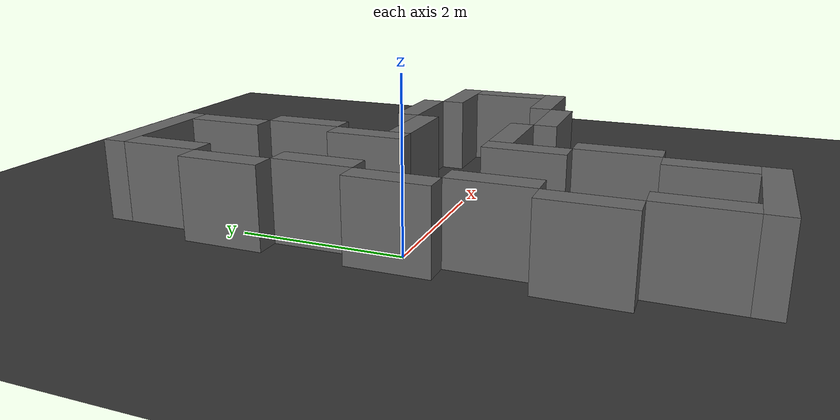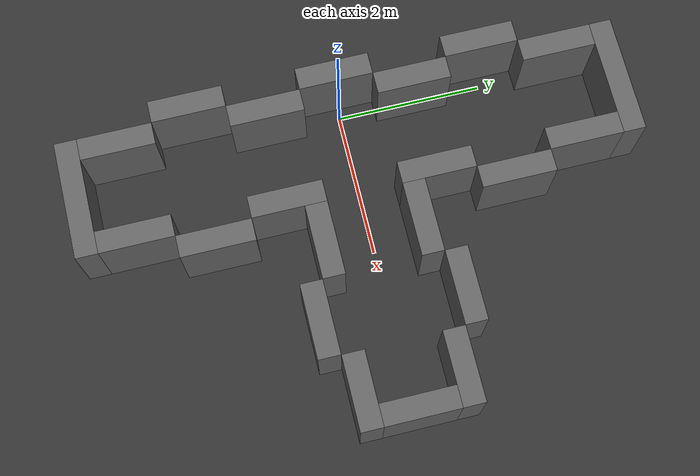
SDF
<sdf version="1.6">
 <world name="default">
  <include><uri>model://sun</uri><pose>12 0 20 0 0 0</pose></include>
  <include><uri>model://fms_t_road</uri></include>
 </world>
</sdf>

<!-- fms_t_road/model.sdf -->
<sdf version="1.6">
<model name='fms_t_road'>
  <static>true</static>
  <pose>0 0 0 0 0 0</pose>
  <link name='link'>
    <collision name='collision'>
      <geometry>
        <plane>
          <normal>0 0 1</normal>
          <size>1000 1000</size>
        </plane>
      </geometry>
    </collision>

    <visual name='visual'>
      <cast_shadows>0</cast_shadows>
      <geometry>
        <plane>
          <normal>0 0 1</normal>
          <size>1000 1000</size>
        </plane>
      </geometry>
      <material>
        <ambient>0.2 0.2 0.2 0.0</ambient>
        <diffuse>0.2 0.2 0.2 0.0</diffuse>
        <specular>0 0 0 0</specular>
        <emissive>0 0 0 1</emissive>
      </material>
    </visual>
    <self_collide>0</self_collide>
    <enable_wind>0</enable_wind>
    <kinematic>0</kinematic>
  </link>

  <link name="wall_0">
    <pose>0.00 3.00 0.50 0 0 0</pose>
    <collision>
      <geometry>
        <box>
          <size>0.30 1.00 1.00</size>
        </box>
      </geometry>
    </collision>
    <visual>
      <geometry>
        <box>
          <size>0.30 1.00 1.00</size>
        </box>
      </geometry>
      <material>
        <ambient>0.4 0.4 0.4 1.0</ambient>
        <diffuse>0.4 0.4 0.4 1.0</diffuse>
        <specular>0 0 0 0</specular>
        <emissive>0 0 0 1</emissive>
      </material>
    </visual>
    <self_collide>0</self_collide>
    <enable_wind>0</enable_wind>
    <kinematic>0</kinematic>
  </link>
  <link name="wall_0">
    <pose>-0.30 2.00 0.50 0 0 0</pose>
    <collision>
      <geometry>
        <box>
          <size>0.30 1.00 1.00</size>
        </box>
      </geometry>
    </collision>
    <visual>
      <geometry>
        <box>
          <size>0.30 1.00 1.00</size>
        </box>
      </geometry>
      <material>
        <ambient>0.4 0.4 0.4 1.0</ambient>
        <diffuse>0.4 0.4 0.4 1.0</diffuse>
        <specular>0 0 0 0</specular>
        <emissive>0 0 0 1</emissive>
      </material>
    </visual>
    <self_collide>0</self_collide>
    <enable_wind>0</enable_wind>
    <kinematic>0</kinematic>
  </link>
  <link name="wall_0">
    <pose>0.00 1.00 0.50 0 0 0</pose>
    <collision>
      <geometry>
        <box>
          <size>0.30 1.00 1.00</size>
        </box>
      </geometry>
    </collision>
    <visual>
      <geometry>
        <box>
          <size>0.30 1.00 1.00</size>
        </box>
      </geometry>
      <material>
        <ambient>0.4 0.4 0.4 1.0</ambient>
        <diffuse>0.4 0.4 0.4 1.0</diffuse>
        <specular>0 0 0 0</specular>
        <emissive>0 0 0 1</emissive>
      </material>
    </visual>
    <self_collide>0</self_collide>
    <enable_wind>0</enable_wind>
    <kinematic>0</kinematic>
  </link>
  <link name="wall_0">
    <pose>-0.30 0.00 0.50 0 0 0</pose>
    <collision>
      <geometry>
        <box>
          <size>0.30 1.00 1.00</size>
        </box>
      </geometry>
    </collision>
    <visual>
      <geometry>
        <box>
          <size>0.30 1.00 1.00</size>
        </box>
      </geometry>
      <material>
        <ambient>0.4 0.4 0.4 1.0</ambient>
        <diffuse>0.4 0.4 0.4 1.0</diffuse>
        <specular>0 0 0 0</specular>
        <emissive>0 0 0 1</emissive>
      </material>
    </visual>
    <self_collide>0</self_collide>
    <enable_wind>0</enable_wind>
    <kinematic>0</kinematic>
  </link>
  <link name="wall_0">
    <pose>0.00 -1.00 0.50 0 0 0</pose>
    <collision>
      <geometry>
        <box>
          <size>0.30 1.00 1.00</size>
        </box>
      </geometry>
    </collision>
    <visual>
      <geometry>
        <box>
          <size>0.30 1.00 1.00</size>
        </box>
      </geometry>
      <material>
        <ambient>0.4 0.4 0.4 1.0</ambient>
        <diffuse>0.4 0.4 0.4 1.0</diffuse>
        <specular>0 0 0 0</specular>
        <emissive>0 0 0 1</emissive>
      </material>
    </visual>
    <self_collide>0</self_collide>
    <enable_wind>0</enable_wind>
    <kinematic>0</kinematic>
  </link>
  <link name="wall_0">
    <pose>-0.30 -2.00 0.50 0 0 0</pose>
    <collision>
      <geometry>
        <box>
          <size>0.30 1.00 1.00</size>
        </box>
      </geometry>
    </collision>
    <visual>
      <geometry>
        <box>
          <size>0.30 1.00 1.00</size>
        </box>
      </geometry>
      <material>
        <ambient>0.4 0.4 0.4 1.0</ambient>
        <diffuse>0.4 0.4 0.4 1.0</diffuse>
        <specular>0 0 0 0</specular>
        <emissive>0 0 0 1</emissive>
      </material>
    </visual>
    <self_collide>0</self_collide>
    <enable_wind>0</enable_wind>
    <kinematic>0</kinematic>
  </link>
  <link name="wall_0">
    <pose>0.00 -3.00 0.50 0 0 0</pose>
    <collision>
      <geometry>
        <box>
          <size>0.30 1.00 1.00</size>
        </box>
      </geometry>
    </collision>
    <visual>
      <geometry>
        <box>
          <size>0.30 1.00 1.00</size>
        </box>
      </geometry>
      <material>
        <ambient>0.4 0.4 0.4 1.0</ambient>
        <diffuse>0.4 0.4 0.4 1.0</diffuse>
        <specular>0 0 0 0</specular>
        <emissive>0 0 0 1</emissive>
      </material>
    </visual>
    <self_collide>0</self_collide>
    <enable_wind>0</enable_wind>
    <kinematic>0</kinematic>
  </link>
  <link name="wall_1">
    <pose>0.65 3.65 0.50 0 0 0</pose>
    <collision>
      <geometry>
        <box>
          <size>1.60 0.30 1.00</size>
        </box>
      </geometry>
    </collision>
    <visual>
      <geometry>
        <box>
          <size>1.60 0.30 1.00</size>
        </box>
      </geometry>
      <material>
        <ambient>0.4 0.4 0.4 1.0</ambient>
        <diffuse>0.4 0.4 0.4 1.0</diffuse>
        <specular>0 0 0 0</specular>
        <emissive>0 0 0 1</emissive>
      </material>
    </visual>
    <self_collide>0</self_collide>
    <enable_wind>0</enable_wind>
    <kinematic>0</kinematic>
  </link>
  <link name="wall_2">
    <pose>0.65 -3.65 0.50 0 0 0</pose>
    <collision>
      <geometry>
        <box>
          <size>1.60 0.30 1.00</size>
        </box>
      </geometry>
    </collision>
    <visual>
      <geometry>
        <box>
          <size>1.60 0.30 1.00</size>
        </box>
      </geometry>
      <material>
        <ambient>0.4 0.4 0.4 1.0</ambient>
        <diffuse>0.4 0.4 0.4 1.0</diffuse>
        <specular>0 0 0 0</specular>
        <emissive>0 0 0 1</emissive>
      </material>
    </visual>
    <self_collide>0</self_collide>
    <enable_wind>0</enable_wind>
    <kinematic>0</kinematic>
  </link>
  <link name="wall_3">
    <pose>1.30 1.00 0.50 0 0 0</pose>
    <collision>
      <geometry>
        <box>
          <size>0.30 1.00 1.00</size>
        </box>
      </geometry>
    </collision>
    <visual>
      <geometry>
        <box>
          <size>0.30 1.00 1.00</size>
        </box>
      </geometry>
      <material>
        <ambient>0.4 0.4 0.4 1.0</ambient>
        <diffuse>0.4 0.4 0.4 1.0</diffuse>
        <specular>0 0 0 0</specular>
        <emissive>0 0 0 1</emissive>
      </material>
    </visual>
    <self_collide>0</self_collide>
    <enable_wind>0</enable_wind>
    <kinematic>0</kinematic>
  </link>
  <link name="wall_4">
    <pose>1.30 -3.00 0.50 0 0 0</pose>
    <collision>
      <geometry>
        <box>
          <size>0.30 1.00 1.00</size>
        </box>
      </geometry>
    </collision>
    <visual>
      <geometry>
        <box>
          <size>0.30 1.00 1.00</size>
        </box>
      </geometry>
      <material>
        <ambient>0.4 0.4 0.4 1.0</ambient>
        <diffuse>0.4 0.4 0.4 1.0</diffuse>
        <specular>0 0 0 0</specular>
        <emissive>0 0 0 1</emissive>
      </material>
    </visual>
    <self_collide>0</self_collide>
    <enable_wind>0</enable_wind>
    <kinematic>0</kinematic>
  </link>
  <link name="wall_3">
    <pose>1.60 2.00 0.50 0 0 0</pose>
    <collision>
      <geometry>
        <box>
          <size>0.30 1.00 1.00</size>
        </box>
      </geometry>
    </collision>
    <visual>
      <geometry>
        <box>
          <size>0.30 1.00 1.00</size>
        </box>
      </geometry>
      <material>
        <ambient>0.4 0.4 0.4 1.0</ambient>
        <diffuse>0.4 0.4 0.4 1.0</diffuse>
        <specular>0 0 0 0</specular>
        <emissive>0 0 0 1</emissive>
      </material>
    </visual>
    <self_collide>0</self_collide>
    <enable_wind>0</enable_wind>
    <kinematic>0</kinematic>
  </link>
  <link name="wall_4">
    <pose>1.60 -2.00 0.50 0 0 0</pose>
    <collision>
      <geometry>
        <box>
          <size>0.30 1.00 1.00</size>
        </box>
      </geometry>
    </collision>
    <visual>
      <geometry>
        <box>
          <size>0.30 1.00 1.00</size>
        </box>
      </geometry>
      <material>
        <ambient>0.4 0.4 0.4 1.0</ambient>
        <diffuse>0.4 0.4 0.4 1.0</diffuse>
        <specular>0 0 0 0</specular>
        <emissive>0 0 0 1</emissive>
      </material>
    </visual>
    <self_collide>0</self_collide>
    <enable_wind>0</enable_wind>
    <kinematic>0</kinematic>
  </link>
  <link name="wall_3">
    <pose>1.30 3.00 0.50 0 0 0</pose>
    <collision>
      <geometry>
        <box>
          <size>0.30 1.00 1.00</size>
        </box>
      </geometry>
    </collision>
    <visual>
      <geometry>
        <box>
          <size>0.30 1.00 1.00</size>
        </box>
      </geometry>
      <material>
        <ambient>0.4 0.4 0.4 1.0</ambient>
        <diffuse>0.4 0.4 0.4 1.0</diffuse>
        <specular>0 0 0 0</specular>
        <emissive>0 0 0 1</emissive>
      </material>
    </visual>
    <self_collide>0</self_collide>
    <enable_wind>0</enable_wind>
    <kinematic>0</kinematic>
  </link>
  <link name="wall_4">
    <pose>1.30 -1.00 0.50 0 0 0</pose>
    <collision>
      <geometry>
        <box>
          <size>0.30 1.00 1.00</size>
        </box>
      </geometry>
    </collision>
    <visual>
      <geometry>
        <box>
          <size>0.30 1.00 1.00</size>
        </box>
      </geometry>
      <material>
        <ambient>0.4 0.4 0.4 1.0</ambient>
        <diffuse>0.4 0.4 0.4 1.0</diffuse>
        <specular>0 0 0 0</specular>
        <emissive>0 0 0 1</emissive>
      </material>
    </visual>
    <self_collide>0</self_collide>
    <enable_wind>0</enable_wind>
    <kinematic>0</kinematic>
  </link>
  <link name="wall_5">
    <pose>1.95 0.65 0.50 0 0 0</pose>
    <collision>
      <geometry>
        <box>
          <size>1.00 0.30 1.00</size>
        </box>
      </geometry>
    </collision>
    <visual>
      <geometry>
        <box>
          <size>1.00 0.30 1.00</size>
        </box>
      </geometry>
      <material>
        <ambient>0.4 0.4 0.4 1.0</ambient>
        <diffuse>0.4 0.4 0.4 1.0</diffuse>
        <specular>0 0 0 0</specular>
        <emissive>0 0 0 1</emissive>
      </material>
    </visual>
    <self_collide>0</self_collide>
    <enable_wind>0</enable_wind>
    <kinematic>0</kinematic>
  </link>
  <link name="wall_6">
    <pose>1.95 -0.65 0.50 0 0 0</pose>
    <collision>
      <geometry>
        <box>
          <size>1.00 0.30 1.00</size>
        </box>
      </geometry>
    </collision>
    <visual>
      <geometry>
        <box>
          <size>1.00 0.30 1.00</size>
        </box>
      </geometry>
      <material>
        <ambient>0.4 0.4 0.4 1.0</ambient>
        <diffuse>0.4 0.4 0.4 1.0</diffuse>
        <specular>0 0 0 0</specular>
        <emissive>0 0 0 1</emissive>
      </material>
    </visual>
    <self_collide>0</self_collide>
    <enable_wind>0</enable_wind>
    <kinematic>0</kinematic>
  </link>
  <link name="wall_5">
    <pose>2.95 0.95 0.50 0 0 0</pose>
    <collision>
      <geometry>
        <box>
          <size>1.00 0.30 1.00</size>
        </box>
      </geometry>
    </collision>
    <visual>
      <geometry>
        <box>
          <size>1.00 0.30 1.00</size>
        </box>
      </geometry>
      <material>
        <ambient>0.4 0.4 0.4 1.0</ambient>
        <diffuse>0.4 0.4 0.4 1.0</diffuse>
        <specular>0 0 0 0</specular>
        <emissive>0 0 0 1</emissive>
      </material>
    </visual>
    <self_collide>0</self_collide>
    <enable_wind>0</enable_wind>
    <kinematic>0</kinematic>
  </link>
  <link name="wall_6">
    <pose>2.95 -0.95 0.50 0 0 0</pose>
    <collision>
      <geometry>
        <box>
          <size>1.00 0.30 1.00</size>
        </box>
      </geometry>
    </collision>
    <visual>
      <geometry>
        <box>
          <size>1.00 0.30 1.00</size>
        </box>
      </geometry>
      <material>
        <ambient>0.4 0.4 0.4 1.0</ambient>
        <diffuse>0.4 0.4 0.4 1.0</diffuse>
        <specular>0 0 0 0</specular>
        <emissive>0 0 0 1</emissive>
      </material>
    </visual>
    <self_collide>0</self_collide>
    <enable_wind>0</enable_wind>
    <kinematic>0</kinematic>
  </link>
  <link name="wall_5">
    <pose>3.95 0.65 0.50 0 0 0</pose>
    <collision>
      <geometry>
        <box>
          <size>1.00 0.30 1.00</size>
        </box>
      </geometry>
    </collision>
    <visual>
      <geometry>
        <box>
          <size>1.00 0.30 1.00</size>
        </box>
      </geometry>
      <material>
        <ambient>0.4 0.4 0.4 1.0</ambient>
        <diffuse>0.4 0.4 0.4 1.0</diffuse>
        <specular>0 0 0 0</specular>
        <emissive>0 0 0 1</emissive>
      </material>
    </visual>
    <self_collide>0</self_collide>
    <enable_wind>0</enable_wind>
    <kinematic>0</kinematic>
  </link>
  <link name="wall_6">
    <pose>3.95 -0.65 0.50 0 0 0</pose>
    <collision>
      <geometry>
        <box>
          <size>1.00 0.30 1.00</size>
        </box>
      </geometry>
    </collision>
    <visual>
      <geometry>
        <box>
          <size>1.00 0.30 1.00</size>
        </box>
      </geometry>
      <material>
        <ambient>0.4 0.4 0.4 1.0</ambient>
        <diffuse>0.4 0.4 0.4 1.0</diffuse>
        <specular>0 0 0 0</specular>
        <emissive>0 0 0 1</emissive>
      </material>
    </visual>
    <self_collide>0</self_collide>
    <enable_wind>0</enable_wind>
    <kinematic>0</kinematic>
  </link>
  <link name="wall_7">
    <pose>4.30 0.00 0.50 0 0 0</pose>
    <collision>
      <geometry>
        <box>
          <size>0.30 1.00 1.00</size>
        </box>
      </geometry>
    </collision>
    <visual>
      <geometry>
        <box>
          <size>0.30 1.00 1.00</size>
        </box>
      </geometry>
      <material>
        <ambient>0.4 0.4 0.4 1.0</ambient>
        <diffuse>0.4 0.4 0.4 1.0</diffuse>
        <specular>0 0 0 0</specular>
        <emissive>0 0 0 1</emissive>
      </material>
    </visual>
    <self_collide>0</self_collide>
    <enable_wind>0</enable_wind>
    <kinematic>0</kinematic>
  </link>
</model>
</sdf>
